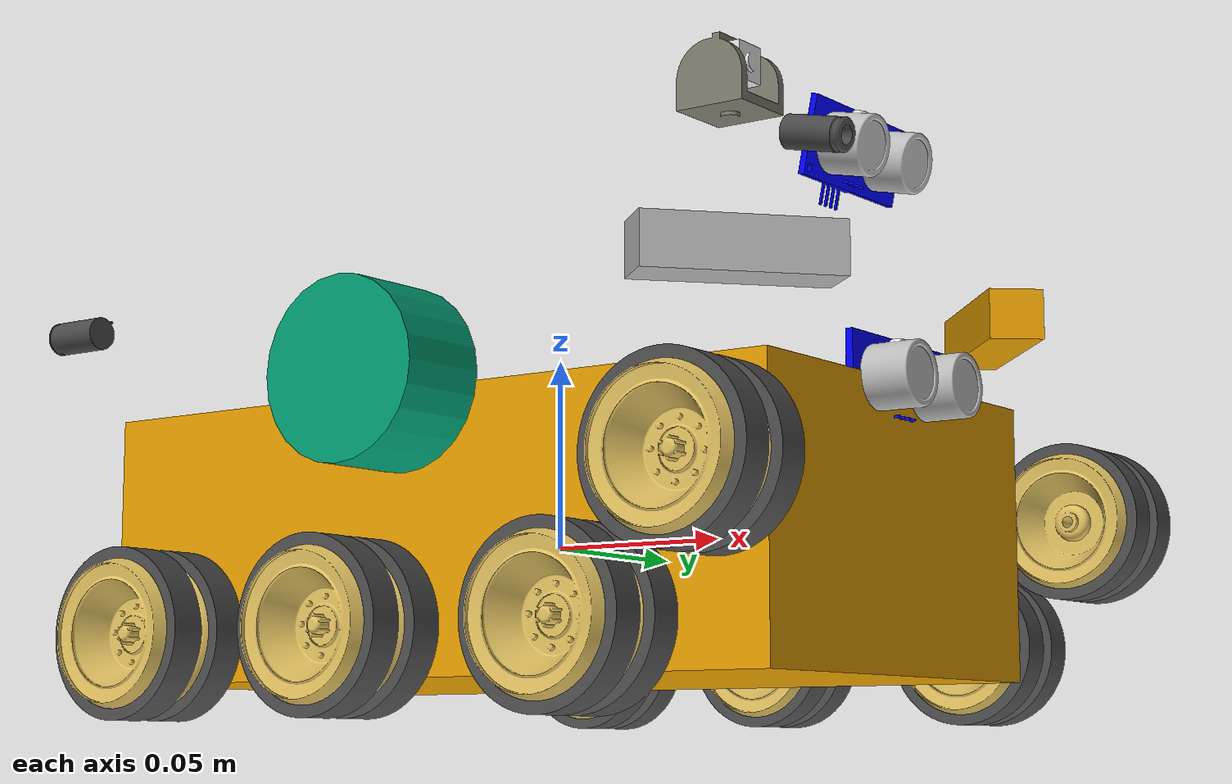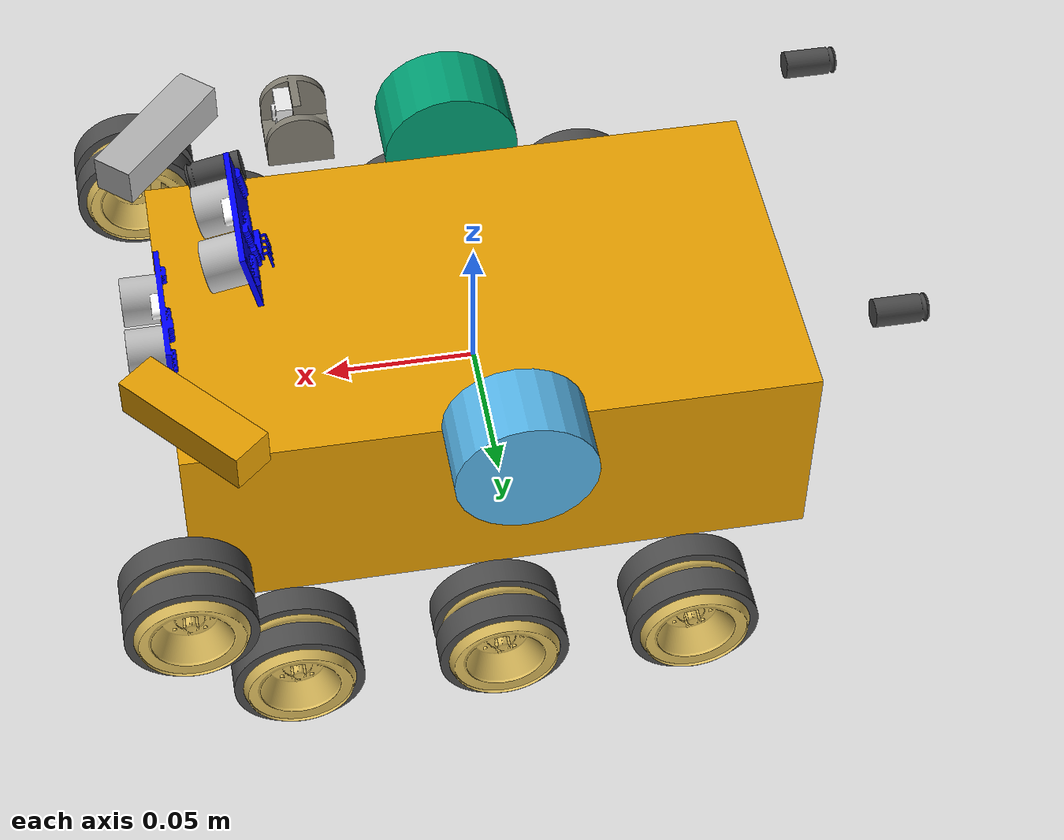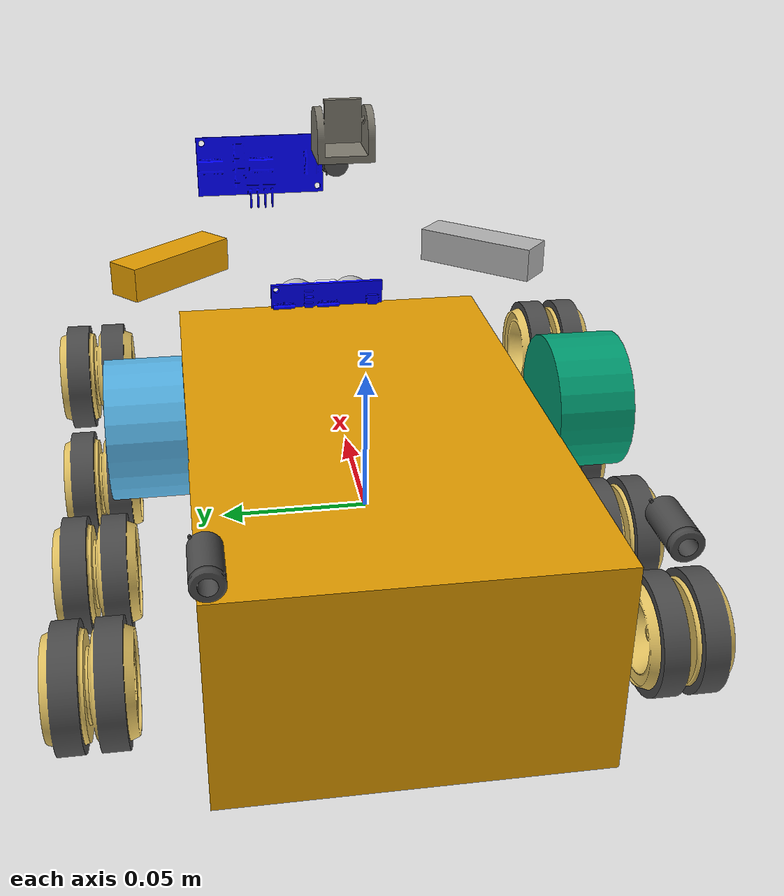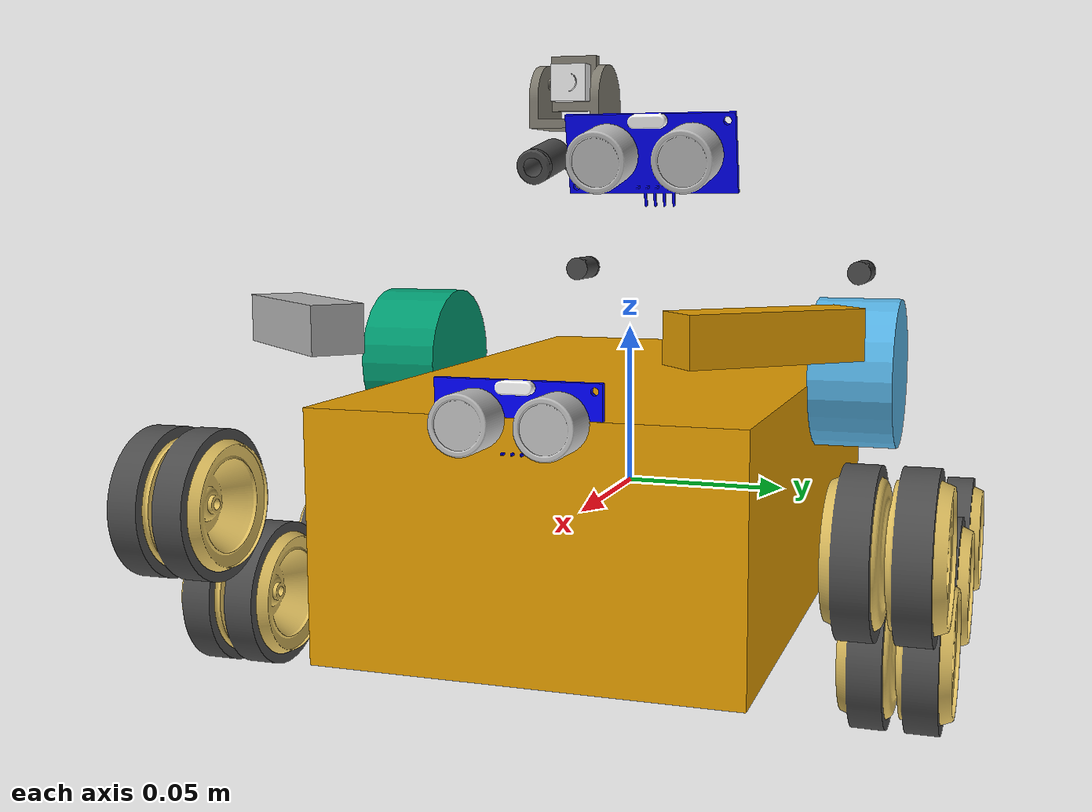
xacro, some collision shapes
<?xml version="1.0"?>
<robot name="devastator" xmlns:xacro="http://www.ros.org/wiki/xacro">

  <xacro:include filename="$(find devastator)/devastator_description/urdf/devastator_full.gazebo.xacro" />
  <!--xacro:include filename="$(find mybot_description)/urdf/materials.xacro" /-->
  <xacro:include filename="$(find mybot_description)/urdf/macros.xacro" />

<!--ROBOT BASE-->
<link name="base_link">
	<visual>
		<origin rpy="0 0 0" xyz="0 0 0"/>
		<geometry>
			<mesh filename="package://devastator/devastator_description/meshes/base/base_full.dae"/>
		</geometry>
    </visual>

	<collision>
		<origin xyz="0.0 0.0 0.0" rpy="0 0 0"/>
		<geometry>
			<box size="0.20576 0.12131 0.07112"/>
		</geometry>
	</collision>

	<inertial>
		<origin xyz="0 0 0" rpy="0 0 0"/>
		<mass value="5.40e-01"/>

	<inertia ixx="2.2124416e-03" ixy="-1.2294101e-05" ixz="3.4938785e-05"
               iyy="2.1193702e-03" iyz="-5.0120904e-06"
               izz="2.0064271e-03" />
	</inertial>
</link>

<!-- RIGHT WHEELS -->
<link name="wheel_one_right">

	<visual>
		<origin rpy="0 0 0" xyz="0 0 0"/>
		<geometry>
			<mesh filename="package://devastator/devastator_description/meshes/wheels/wheel_basic.dae"/>
		</geometry>
	</visual>

	<collision>
		<origin xyz="0 0 0" rpy="1.57 0 0"/>
		<geometry>
			<cylinder length="0.025" radius="0.020" />
		</geometry>
	</collision>

	<inertial>

		<origin xyz="0 0 0" rpy="0 0 0"/>
		<mass value="1.2e-02"/>

		<inertia ixx="1.1175580e-05" ixy="-4.2369783e-11" ixz="-5.9381719e-09"
				iyy="1.1192413e-05" iyz="-1.4400107e-11"
               izz="2.0712558e-05" />
	</inertial>
</link>

<joint name="wheel_one_right" type="continuous">
	<parent link="base_link"/>
	<child link="wheel_one_right"/>
	<origin xyz="0.10538 -0.095 0.008" rpy="0 0 0"/>
	<axis xyz="0 1 0"/>
</joint>

<link name="wheel_two_right">
	<visual>
		<origin rpy="0 0 0" xyz="0 0 0"/>
		<geometry>
			<mesh filename="package://devastator/devastator_description/meshes/wheels/wheel_basic.dae"/>
		</geometry>
	</visual>

	<collision>
		<origin xyz="0 0 0" rpy="1.57 0 0"/>
		<geometry>
			<cylinder length="0.025" radius="0.020" />
		</geometry>
	</collision>

	<inertial>

		<origin xyz="0 0 0" rpy="0 0 0"/>
		<mass value="1.2e-02"/>

		<inertia ixx="3.0153996560e-03" ixy="0.0" ixz="1.7522996572e-11"
					iyy="4.0932945308e-03" iyz="0.0"
					izz="3.0153987822e-03"/>
	</inertial>

</link>

<joint name="wheel_two_right" type="continuous">
	<parent link="base_link"/>
	<child link="wheel_two_right"/>
	<origin xyz="0.07363 -0.095 -0.025" rpy="0 0 0"/>
	<limit effort="100" velocity="100"/>
    <joint_properties damping="0.0" friction="0.0"/>
	<axis xyz="0 1 0"/>
</joint>

<link name="wheel_three_right">
	<visual>
		<origin rpy="0 0 0" xyz="0 0 0"/>
		<geometry>
			<mesh filename="package://devastator/devastator_description/meshes/wheels/wheel_basic.dae"/>
		</geometry>
	</visual>

	<collision>
		<origin xyz="0 0 0" rpy="1.57 0 0"/>
		<geometry>
			<cylinder length="0.025" radius="0.020" />
		</geometry>
	</collision>

	<inertial>

		<origin xyz="0 0 0" rpy="0 0 0"/>
		<mass value="1.2e-02"/>

		<inertia ixx="1.1175580e-05" ixy="-4.2369783e-11" ixz="-5.9381719e-09"
				iyy="1.1192413e-05" iyz="-1.4400107e-11"
               izz="2.0712558e-05" />
	</inertial>
</link>

<joint name="wheel_three_right" type="continuous">
	<parent link="base_link"/>
	<child link="wheel_three_right"/>
	<origin xyz="0.00765 -0.095 -0.025" rpy="0 0 0"/>
	<limit effort="100" velocity="100"/>
    <joint_properties damping="0.0" friction="0.0"/>
	<axis xyz="0 1 0"/>
</joint>

<link name="wheel_four_right">
	<visual>
		<origin rpy="0 0 0" xyz="0 0 0"/>
		<geometry>
			<mesh filename="package://devastator/devastator_description/meshes/wheels/wheel_basic.dae"/>
		</geometry>
	</visual>

	<collision>
		<origin xyz="0 0 0" rpy="1.57 0 0"/>
		<geometry>
			<cylinder length="0.025" radius="0.020" />
		</geometry>
	</collision>

	<inertial>

		<origin xyz="0 0 0" rpy="0 0 0"/>
		<mass value="1.2e-02"/>

		<inertia ixx="1.1175580e-05" ixy="-4.2369783e-11" ixz="-5.9381719e-09"
				iyy="1.1192413e-05" iyz="-1.4400107e-11"
               izz="2.0712558e-05" />
	</inertial>
</link>

<joint name="wheel_four_right" type="continuous">
	<parent link="base_link"/>
	<child link="wheel_four_right"/>
	<origin xyz="-0.05464 -0.095 -0.025" rpy="0 0 0"/>
	<limit effort="100" velocity="100"/>
    <joint_properties damping="0.0" friction="0.0"/>
	<axis xyz="0 1 0"/>
</joint>

<!--LEFT WHEELS-->
<link name="wheel_one_left">
	<visual>
		<origin rpy="0 0 3.14159" xyz="0 0 0"/>
		<geometry>
			<mesh filename="package://devastator/devastator_description/meshes/wheels/wheel_basic.dae"/>
		</geometry>
	</visual>

	<collision>
		<origin xyz="0 0 0" rpy="1.57 0 0"/>
		<geometry>
			<cylinder length="0.025" radius="0.020" />
		</geometry>
	</collision>

	<inertial>

		<origin xyz="0 0 0" rpy="0 0 0"/>
		<mass value="1.2e-02"/>

		<inertia ixx="1.1175580e-05" ixy="-4.2369783e-11" ixz="-5.9381719e-09"
				iyy="1.1192413e-05" iyz="-1.4400107e-11"
               izz="2.0712558e-05" />
	</inertial>

</link>

<joint name="wheel_one_left" type="continuous">
	<parent link="base_link"/>
	<child link="wheel_one_left"/>
	<origin xyz="0.10538 0.095  0.008" rpy="0 0 0"/>
	<limit effort="100" velocity="100"/>
    <joint_properties damping="0.0" friction="0.0"/>
	<axis xyz="0 1 0"/>
</joint>

<link name="wheel_two_left">
	<visual>
		<origin rpy="0 0 3.14159" xyz="0 0 0"/>
		<geometry>
			<mesh filename="package://devastator/devastator_description/meshes/wheels/wheel_basic.dae"/>
		</geometry>
	</visual>

	<collision>
		<origin xyz="0 0 0" rpy="1.57 0 0"/>
		<geometry>
			<cylinder length="0.025" radius="0.020" />
		</geometry>
	</collision>

	<inertial>

		<origin xyz="0 0 0" rpy="0 0 0"/>
		<mass value="1.2e-02"/>

		<inertia ixx="1.1175580e-05" ixy="-4.2369783e-11" ixz="-5.9381719e-09"
				iyy="1.1192413e-05" iyz="-1.4400107e-11"
               izz="2.0712558e-05" />
	</inertial>
</link>

<joint name="wheel_two_left" type="continuous">
	<parent link="base_link"/>
	<child link="wheel_two_left"/>
	<origin xyz="0.07363 0.095  -0.025" rpy="0 0 0"/>
	<limit effort="100" velocity="100"/>
    <joint_properties damping="0.0" friction="0.0"/>
	<axis xyz="0 1 0"/>
</joint>

<link name="wheel_three_left">
	<visual>
		<origin rpy="0 0 3.14159" xyz="0 0 0"/>
		<geometry>
			<mesh filename="package://devastator/devastator_description/meshes/wheels/wheel_basic.dae"/>
		</geometry>
	</visual>

	<collision>
		<origin xyz="0 0 0" rpy="1.57 0 0"/>
		<geometry>
			<cylinder length="0.025" radius="0.020" />
		</geometry>
	</collision>

	<inertial>

		<origin xyz="0 0 0" rpy="0 0 0"/>
		<mass value="1.2e-02"/>

		<inertia ixx="1.1175580e-05" ixy="-4.2369783e-11" ixz="-5.9381719e-09"
				iyy="1.1192413e-05" iyz="-1.4400107e-11"
               izz="2.0712558e-05" />
	</inertial>
</link>

<joint name="wheel_three_left" type="continuous">
	<parent link="base_link"/>
	<child link="wheel_three_left"/>
	<origin xyz="0.00765 0.095  -0.025" rpy="0 0 0"/>
	<limit effort="100" velocity="100"/>
    <joint_properties damping="0.0" friction="0.0"/>
	<axis xyz="0 1 0"/>
</joint>

<link name="wheel_four_left">
	<visual>
		<origin rpy="0 0 3.14159" xyz="0 0 0"/>
		<geometry>
			<mesh filename="package://devastator/devastator_description/meshes/wheels/wheel_basic.dae"/>
		</geometry>
	</visual>

	<collision>
		<origin xyz="0 0 0" rpy="1.57 0 0"/>
		<geometry>
			<cylinder length="0.025" radius="0.020" />
		</geometry>
	</collision>

	<inertial>

		<origin xyz="0 0 0" rpy="0 0 0"/>
		<mass value="1.2e-02"/>

		<inertia ixx="1.1175580e-05" ixy="-4.2369783e-11" ixz="-5.9381719e-09"
				iyy="1.1192413e-05" iyz="-1.4400107e-11"
               izz="2.0712558e-05" />
	</inertial>

</link>

<joint name="wheel_four_left" type="continuous">
	<parent link="base_link"/>
	<child link="wheel_four_left"/>
	<origin xyz="-0.05464 0.095 -0.025" rpy="0 0 0"/>
	<limit effort="100" velocity="100"/>
    <joint_properties damping="0.0" friction="0.0"/>
	<axis xyz="0 1 0"/>
</joint>

<link name="tracked_wheel_right">
	<visual>
		<origin rpy="0 0 0" xyz="0 0 0"/>
		<geometry>
			<mesh filename="package://devastator/devastator_description/meshes/wheels/wheel_track.dae"/>
		</geometry>
	</visual>

	<collision>
		<origin xyz="0 0 0" rpy="0 0 0"/>
		<geometry>
			<cylinder length="0.025" radius="0.023" />
		</geometry>
	</collision>

	<inertial>

		<origin xyz="0 0 0" rpy="0 0 0"/>
		<mass value="9.0e-02"/>

		<inertia ixx="1.1175580e-05" ixy="-4.2369783e-11" ixz="-5.9381719e-09"
				iyy="1.1192413e-05" iyz="-1.4400107e-11"
               izz="2.0712558e-05" />
	</inertial>
</link>

<joint name="tracked_wheel_right" type="continuous">
	<parent link="base_link"/>
	<child link="tracked_wheel_right"/>
	<origin xyz="-0.0027 0.073 0.0375" rpy="-1.57 0 -3.14"/>
	<limit effort="100" velocity="100"/>
    <joint_properties damping="0.0" friction="0.0"/>
	<axis xyz="0 0 1"/>
</joint>

<link name="tracked_wheel_left">
	<visual>
		<origin rpy="0 0 0" xyz="0 0 0"/>
		<geometry>
			<mesh filename="package://devastator/devastator_description/meshes/wheels/wheel_track.dae"/>
		</geometry>
	</visual>

	<collision>
		<origin xyz="0 0 0" rpy="0 0 0"/>
		<geometry>
			<cylinder length="0.025" radius="0.023" />
		</geometry>
	</collision>

	<inertial>

		<origin xyz="0 0 0" rpy="0 0 0"/>
		<mass value="9.0e-02"/>

		<inertia ixx="1.1175580e-05" ixy="-4.2369783e-11" ixz="-5.9381719e-09"
				iyy="1.1192413e-05" iyz="-1.4400107e-11"
               izz="2.0712558e-05" />
	</inertial>
</link>

<joint name="tracked_wheel_left" type="continuous">
	<parent link="base_link"/>
	<child link="tracked_wheel_left"/>
	<origin xyz="-0.0027 -0.073  0.0375" rpy="-1.57 0 0"/>
	<limit effort="100" velocity="100"/>
    <joint_properties damping="0.0" friction="0.0"/>
	<axis xyz="0 0 1"/>
</joint>

<!--SENSORS/ACCESSORIES-->
<link name="camera_pan">
  <collision>
    <origin xyz="0 0 0" rpy="0 0 0"/>
    <geometry>
    <!-- box size ="width lengtht height"-->
      <box size="0.01 0.025 0.03"/>
    </geometry>
  </collision>

  <visual>
    <origin xyz="0 0 0" rpy="0 0 0"/>
    <geometry>
      <mesh filename="package://devastator/devastator_description/meshes/base/camera_pan.dae"/>
    </geometry>
  </visual>

</link>

<joint name="camera_pan_joint" type="revolute">
  <parent link="base_link"/>
  <child link="camera_pan"/>
  <origin xyz="0.0545 0  0.1125" rpy="0 0 0"/>
  <limit effort="1000.0" lower="0.0" upper="6.2831" velocity="0.5"/>
  <axis xyz="0 0 1"/>
</joint>

<link name="camera">
  <collision>
    <origin xyz="0 0 0" rpy="0 0 0"/>
    <geometry>
      <box size="0.005 0.01 0.01"/>
    </geometry>
  </collision>

  <visual>
    <origin xyz="0 0 0" rpy="0 0 0"/>
    <geometry>
      <mesh filename="package://devastator/devastator_description/meshes/sensors/camera.dae"/>
    </geometry>
  </visual>

  <inertial>
    <mass value="0.25" />
    <origin xyz="0 0 0" rpy="0 0 0"/>
    <box_inertia m="0.25" x="0.015" y="0.015" z="0.02" />
    <inertia ixx="1.0e-6" ixy="0.0" ixz="0.0"
    iyy="1.0e-6" iyz="0.0" izz="1.0e-6" />
  </inertial>
</link>
<joint name="camera_joint" type="fixed">
  <axis xyz="0 1 0" />
  <origin xyz="0.00625 0 0.01" rpy="0 0 0"/>
  <parent link="camera_pan"/>
  <child link="camera"/>
</joint>

<link name="dIR_BL">
  <collision>
    <axis xyz="0 0 0" />
    <origin xyz="0.0085 0 0" rpy="0 1.57 0"/>
  <geometry>
    <cylinder  length="0.017" radius="0.0045" />
  </geometry>
  </collision>

  <visual>
  <origin xyz="0 0 0" rpy="0 0 0"/>
  <geometry>
    <mesh filename="package://devastator/devastator_description/meshes/sensors/digital_ir.dae"/>
  </geometry>
  </visual>

  <inertial>
    <mass value="0.25" />
    <origin xyz="0 0 0" rpy="0 0 0"/>
    <box_inertia m="0.25" x="0.015" y="0.015" z="0.02" />
    <inertia ixx="1.0e-6" ixy="0.0" ixz="0.0"
    iyy="1.0e-6" iyz="0.0" izz="1.0e-6" />
  </inertial>
</link>

<joint name="dIR_BL_joint" type="fixed">
  <axis xyz="0 1 0" />
  <origin xyz="-0.11676 0.05761 0.06139" rpy="0 3.1416 0"/>
  <parent link="base_link"/>
  <child link="dIR_BL"/>
</joint>

<link name="dIR_BR">
  <collision>
    <axis xyz="0 1 0" />
    <origin xyz="0.0085 0 0" rpy="0 1.57 0"/>

    <geometry>
      <cylinder radius="0.0045" length="0.017" />
    </geometry>
  </collision>

  <visual>
    <origin xyz="0 0 0" rpy="0 0 0"/>
    <geometry>
      <mesh filename="package://devastator/devastator_description/meshes/sensors/digital_ir.dae"/>
    </geometry>
  </visual>

  <inertial>
    <mass value="0.25" />
    <origin xyz="0 0 0" rpy="0 0 0"/>
    <box_inertia m="0.25" x="0.015" y="0.015" z="0.02" />
    <inertia ixx="1.0e-6" ixy="0.0" ixz="0.0"
    iyy="1.0e-6" iyz="0.0" izz="1.0e-6" />
  </inertial>
</link>

<joint name="dIR_BR_joint" type="fixed">
  <axis xyz="0 1 0" />
  <origin xyz="-0.11676 -0.05761 0.06139" rpy="0 3.1416 0"/>
  <parent link="base_link"/>
  <child link="dIR_BR"/>
</joint>

<link name="aIR_FR">
  <collision>
    <origin xyz="0 0 -0.00709" rpy="0 0 0"/>
    <geometry>
      <box size="0.01418 0.04839 0.013"/>
    </geometry>
  </collision>

  <visual>
    <origin xyz="0 0 0" rpy="0 0 0"/>
    <geometry>
      <mesh filename="package://devastator/devastator_description/meshes/sensors/analog_ir.dae"/>
    </geometry>
  </visual>

  <inertial>
    <mass value="0.25" />
    <origin xyz="0 0 0" rpy="0 0 0"/>
    <box_inertia m="0.25" x="0.015" y="0.015" z="0.02" />
    <inertia ixx="1.0e-6" ixy="0.0" ixz="0.0"
    iyy="1.0e-6" iyz="0.0" izz="1.0e-6" />
  </inertial>
</link>

<joint name="aIR_FR_joint" type="revolute">
  <axis xyz="0 0 1" />
  <origin xyz="0.09648 -0.06266 0.06481" rpy="0 0 -0.7217"/>
  <limit effort="1000.0" lower="0.0" upper="1.2217" velocity="0.5"/>
  <parent link="base_link"/>
  <child link="aIR_FR"/>
</joint>

<link name="aIR_FL">
  <collision>
    <origin xyz="0 0 -0.00709" rpy="0 0 0"/>
    <geometry>
      <box size="0.01418 0.04839 0.013"/>
    </geometry>
  </collision>

  <visual>
    <origin xyz="0 0 0" rpy="0 0 0"/>
    <geometry>
      <mesh filename="package://devastator/devastator_description/meshes/sensors/analog_ir.dae"/>
    </geometry>
  </visual>

  <inertial>
    <mass value="0.25" />
    <origin xyz="0 0 0" rpy="0 0 0"/>
    <box_inertia m="0.25" x="0.015" y="0.015" z="0.02" />
    <inertia ixx="1.0e-6" ixy="0.0" ixz="0.0"
    iyy="1.0e-6" iyz="0.0" izz="1.0e-6" />
  </inertial>
</link>

<joint name="aIR_FL_joint" type="revolute">
  <axis xyz="0 0 1" />
  <origin xyz="0.09648 0.06266 0.06481" rpy="0 0 0.7217"/>
  <limit effort="1000.0" lower="-1.2217" upper="0.0" velocity="0.5"/>
  <parent link="base_link"/>
  <child link="aIR_FL"/>
</joint>

<link name="sonic_FD">
  <collision>
    <origin xyz="0.00725 0 0" rpy="0 0 0"/>
    <geometry>
      <box size="0.0145 0.04572 0.02"/>
    </geometry>
  </collision>

  <visual>
    <origin xyz="0 0 0" rpy="0 0 0"/>
    <geometry>
      <mesh filename="package://devastator/devastator_description/meshes/sensors/ultrasonic.dae"/>
    </geometry>
  </visual>

  <inertial>
    <mass value="0.25" />
    <origin xyz="0 0 0" rpy="0 0 0"/>
    <box_inertia m="0.25" x="0.015" y="0.015" z="0.02" />
    <inertia ixx="1.0e-6" ixy="0.0" ixz="0.0"
    iyy="1.0e-6" iyz="0.0" izz="1.0e-6" />
  </inertial>
</link>

<joint name="sonic_FD" type="fixed">
  <axis xyz="0 0 1" />
  <origin xyz="0.0992 0 0.03481" rpy="0 0 0"/>
  <parent link="base_link"/>
  <child link="sonic_FD"/>
</joint>

<link name="sonic_FF">
  <collision>
    <origin xyz="0.00725 0 0" rpy="0 0 0"/>
    <geometry>
      <box size="0.0145 0.04572 0.02"/>
    </geometry>
  </collision>

  <visual>
    <origin xyz="0 0 0" rpy="0 0 0"/>
    <geometry>
      <mesh filename="package://devastator/devastator_description/meshes/sensors/ultrasonic.dae"/>
    </geometry>
  </visual>

  <inertial>
    <mass value="0.25" />
    <origin xyz="0 0 0" rpy="0 0 0"/>
    <box_inertia m="0.25" x="0.015" y="0.015" z="0.02" />
    <inertia ixx="1.0e-6" ixy="0.0" ixz="0.0"
    iyy="1.0e-6" iyz="0.0" izz="1.0e-6" />
  </inertial>
</link>

<joint name="sonic_FF" type="fixed">
  <axis xyz="0 1 0" />
  <origin xyz="0.07229 0.02739 0.10304" rpy="0 0.20944 0"/>
  <parent link="base_link"/>
  <child link="sonic_FF"/>
</joint>

<link name="dIR_FF">
  <collision>
    <axis xyz="0 1 0" />
    <origin xyz="0.0085 0 0" rpy="0 -1.57 0"/>
    <geometry>
      <cylinder length="0.017" radius="0.0045"/>
    </geometry>
  </collision>

  <visual>
    <origin xyz="0 0 0" rpy="0 0 0"/>
    <geometry>
      <mesh filename="package://devastator/devastator_description/meshes/sensors/digital_ir.dae"/>
    </geometry>
  </visual>

  <inertial>
    <mass value="0.25" />
    <origin xyz="0 0 0" rpy="0 0 0"/>
    <box_inertia m="0.25" x="0.015" y="0.015" z="0.02" />
    <inertia ixx="1.0e-6" ixy="0.0" ixz="0.0"
    iyy="1.0e-6" iyz="0.0" izz="1.0e-6" />
  </inertial>
</link>

<joint name="dIR_FF" type="fixed">
  <axis xyz="0 1 0" />
  <origin xyz="0.07229 0 0.10304" rpy="0 0.20944 0"/>
  <parent link="base_link"/>
  <child link="dIR_FF"/>
</joint>

</robot>

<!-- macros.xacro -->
<robot>
  <macro name="cylinder_inertia" params="m r h">
    <inertia  ixx="${m*(3*r*r+h*h)/12}" ixy = "0" ixz = "0"
      iyy="${m*(3*r*r+h*h)/12}" iyz = "0"
      izz="${m*r*r/2}"
    />
  </macro>

  <macro name="box_inertia" params="m x y z">
    <inertia  ixx="${m*(y*y+z*z)/12}" ixy = "0" ixz = "0"
      iyy="${m*(x*x+z*z)/12}" iyz = "0"
      izz="${m*(x*x+z*z)/12}"
    />
  </macro>

  <macro name="sphere_inertia" params="m r">
    <inertia  ixx="${2*m*r*r/5}" ixy = "0" ixz = "0"
      iyy="${2*m*r*r/5}" iyz = "0"
      izz="${2*m*r*r/5}"
    />
  </macro>

</robot>
